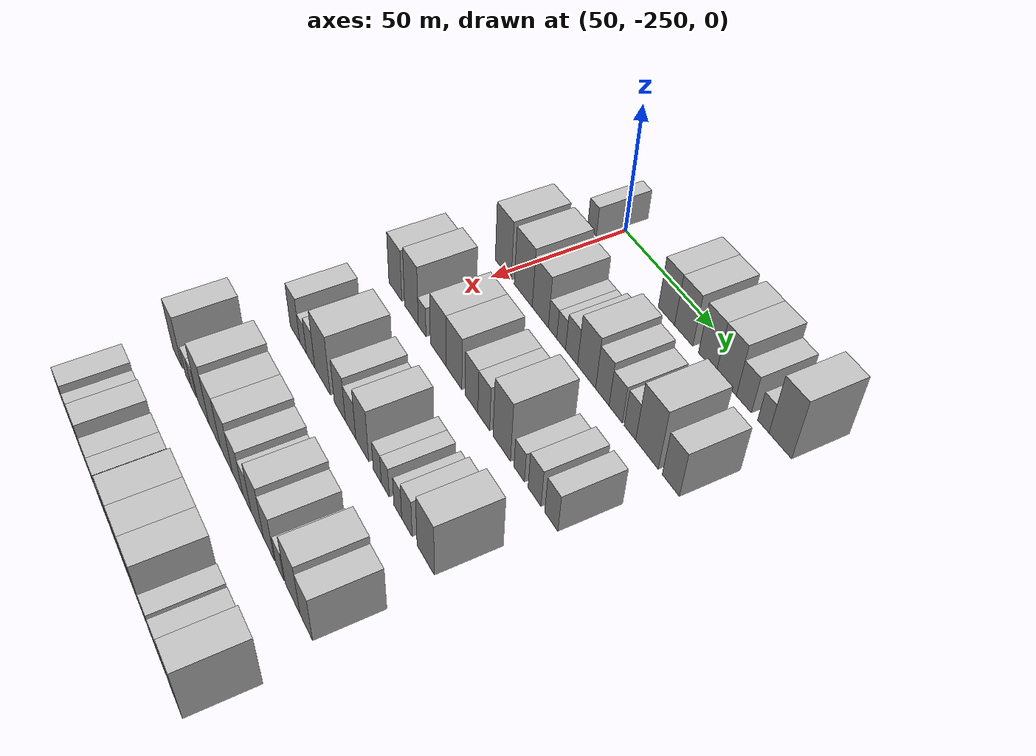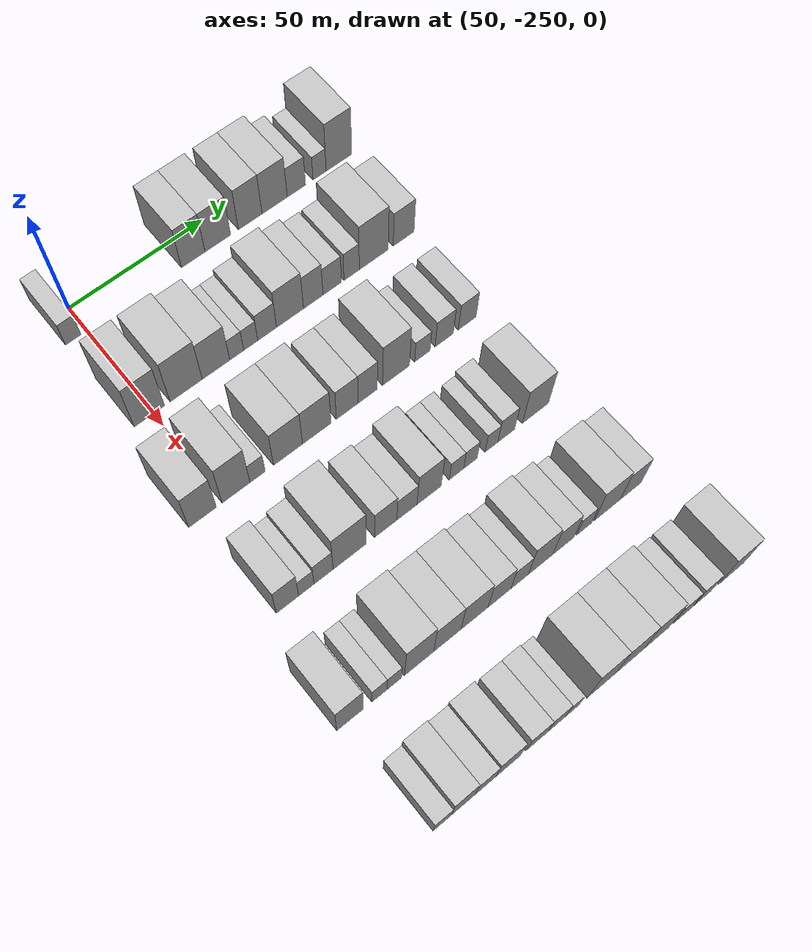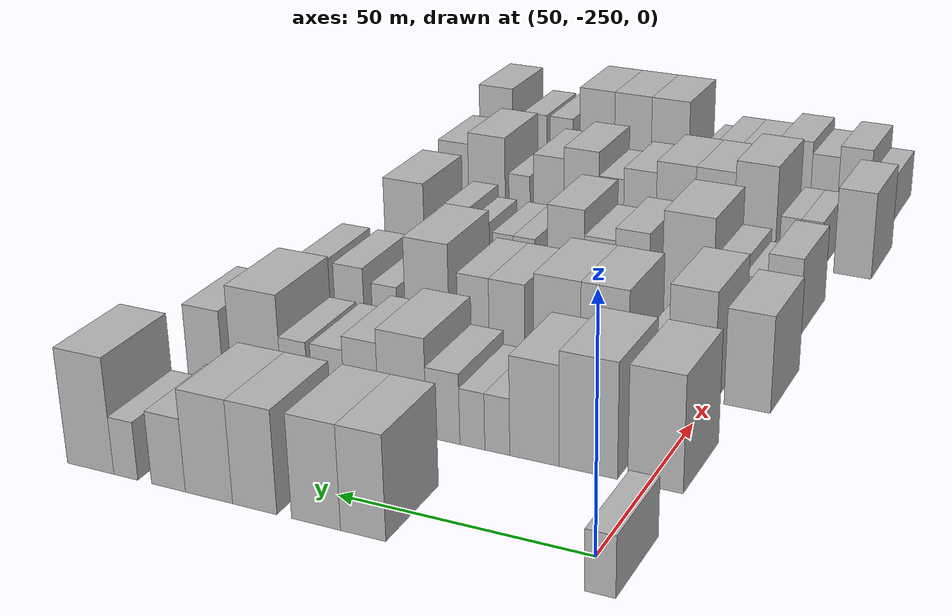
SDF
<sdf version="1.6">
 <world name="default">
  <model name="building_36">
   <static>1</static>
   <pose>50.0000 -254.8560 0 0.000000 0.000000 0.000000</pose>
   <link name="link">
    <pose>0 0 6.00 0 0 0</pose>
    <collision name="collision"><geometry><box><size>20.0000 5.5617 12.0000</size></box></geometry></collision>
    <visual name="visual">
     <cast_shadows>0</cast_shadows>
     <geometry><box><size>20.0000 5.5617 12.0000</size></box></geometry>
     <material>
      <script>
       <uri>model://HANNAS_wall/materials/scripts</uri>
       <uri>model://HANNAS_wall/materials/textures</uri>
       <name>vrc/HANNAS_wall</name>
      </script>
     </material>
    </visual>
   </link>
  </model>
  <model name="building_37">
   <static>1</static>
   <pose>50.0000 -210.6748 0 0.000000 0.000000 0.000000</pose>
   <link name="link">
    <pose>0 0 10.50 0 0 0</pose>
    <collision name="collision"><geometry><box><size>20.0000 8.9336 21.0000</size></box></geometry></collision>
    <visual name="visual">
     <cast_shadows>0</cast_shadows>
     <geometry><box><size>20.0000 8.9336 21.0000</size></box></geometry>
     <material>
      <script>
       <uri>model://HANNAS_wall/materials/scripts</uri>
       <uri>model://HANNAS_wall/materials/textures</uri>
       <name>vrc/HANNAS_wall</name>
      </script>
     </material>
    </visual>
   </link>
  </model>
  <model name="building_38">
   <static>1</static>
   <pose>50.0000 -201.2878 0 0.000000 0.000000 0.000000</pose>
   <link name="link">
    <pose>0 0 10.50 0 0 0</pose>
    <collision name="collision"><geometry><box><size>20.0000 9.8404 21.0000</size></box></geometry></collision>
    <visual name="visual">
     <cast_shadows>0</cast_shadows>
     <geometry><box><size>20.0000 9.8404 21.0000</size></box></geometry>
     <material>
      <script>
       <uri>model://HANNAS_wall/materials/scripts</uri>
       <uri>model://HANNAS_wall/materials/textures</uri>
       <name>vrc/HANNAS_wall</name>
      </script>
     </material>
    </visual>
   </link>
  </model>
  <model name="building_39">
   <static>1</static>
   <pose>50.0000 -188.7767 0 0.000000 0.000000 0.000000</pose>
   <link name="link">
    <pose>0 0 10.50 0 0 0</pose>
    <collision name="collision"><geometry><box><size>20.0000 9.1818 21.0000</size></box></geometry></collision>
    <visual name="visual">
     <cast_shadows>0</cast_shadows>
     <geometry><box><size>20.0000 9.1818 21.0000</size></box></geometry>
     <material>
      <script>
       <uri>model://HANNAS_wall/materials/scripts</uri>
       <uri>model://HANNAS_wall/materials/textures</uri>
       <name>vrc/HANNAS_wall</name>
      </script>
     </material>
    </visual>
   </link>
  </model>
  <model name="building_40">
   <static>1</static>
   <pose>50.0000 -179.1818 0 0.000000 0.000000 0.000000</pose>
   <link name="link">
    <pose>0 0 10.50 0 0 0</pose>
    <collision name="collision"><geometry><box><size>20.0000 10.0080 21.0000</size></box></geometry></collision>
    <visual name="visual">
     <cast_shadows>0</cast_shadows>
     <geometry><box><size>20.0000 10.0080 21.0000</size></box></geometry>
     <material>
      <script>
       <uri>model://HANNAS_wall/materials/scripts</uri>
       <uri>model://HANNAS_wall/materials/textures</uri>
       <name>vrc/HANNAS_wall</name>
      </script>
     </material>
    </visual>
   </link>
  </model>
  <model name="building_41">
   <static>1</static>
   <pose>50.0000 -170.5255 0 0.000000 0.000000 0.000000</pose>
   <link name="link">
    <pose>0 0 7.50 0 0 0</pose>
    <collision name="collision"><geometry><box><size>20.0000 7.3045 15.0000</size></box></geometry></collision>
    <visual name="visual">
     <cast_shadows>0</cast_shadows>
     <geometry><box><size>20.0000 7.3045 15.0000</size></box></geometry>
     <material>
      <script>
       <uri>model://HANNAS_wall/materials/scripts</uri>
       <uri>model://HANNAS_wall/materials/textures</uri>
       <name>vrc/HANNAS_wall</name>
      </script>
     </material>
    </visual>
   </link>
  </model>
  <model name="building_42">
   <static>1</static>
   <pose>50.0000 -161.2277 0 0.000000 0.000000 0.000000</pose>
   <link name="link">
    <pose>0 0 6.00 0 0 0</pose>
    <collision name="collision"><geometry><box><size>20.0000 5.2911 12.0000</size></box></geometry></collision>
    <visual name="visual">
     <cast_shadows>0</cast_shadows>
     <geometry><box><size>20.0000 5.2911 12.0000</size></box></geometry>
     <material>
      <script>
       <uri>model://HANNAS_wall/materials/scripts</uri>
       <uri>model://HANNAS_wall/materials/textures</uri>
       <name>vrc/HANNAS_wall</name>
      </script>
     </material>
    </visual>
   </link>
  </model>
  <model name="building_43">
   <static>1</static>
   <pose>50.0000 -153.3811 0 0.000000 0.000000 0.000000</pose>
   <link name="link">
    <pose>0 0 12.00 0 0 0</pose>
    <collision name="collision"><geometry><box><size>20.0000 10.4020 24.0000</size></box></geometry></collision>
    <visual name="visual">
     <cast_shadows>0</cast_shadows>
     <geometry><box><size>20.0000 10.4020 24.0000</size></box></geometry>
     <material>
      <script>
       <uri>model://HANNAS_wall/materials/scripts</uri>
       <uri>model://HANNAS_wall/materials/textures</uri>
       <name>vrc/HANNAS_wall</name>
      </script>
     </material>
    </visual>
   </link>
  </model>
  <model name="building_165">
   <static>1</static>
   <pose>85.0000 -251.4950 0 0.000000 0.000000 0.000000</pose>
   <link name="link">
    <pose>0 0 12.00 0 0 0</pose>
    <collision name="collision"><geometry><box><size>20.0000 10.7278 24.0000</size></box></geometry></collision>
    <visual name="visual">
     <cast_shadows>0</cast_shadows>
     <geometry><box><size>20.0000 10.7278 24.0000</size></box></geometry>
     <material>
      <script>
       <uri>model://HANNAS_wall/materials/scripts</uri>
       <uri>model://HANNAS_wall/materials/textures</uri>
       <name>vrc/HANNAS_wall</name>
      </script>
     </material>
    </visual>
   </link>
  </model>
  <model name="building_166">
   <static>1</static>
   <pose>85.0000 -238.3337 0 0.000000 0.000000 0.000000</pose>
   <link name="link">
    <pose>0 0 12.00 0 0 0</pose>
    <collision name="collision"><geometry><box><size>20.0000 11.5947 24.0000</size></box></geometry></collision>
    <visual name="visual">
     <cast_shadows>0</cast_shadows>
     <geometry><box><size>20.0000 11.5947 24.0000</size></box></geometry>
     <material>
      <script>
       <uri>model://HANNAS_wall/materials/scripts</uri>
       <uri>model://HANNAS_wall/materials/textures</uri>
       <name>vrc/HANNAS_wall</name>
      </script>
     </material>
    </visual>
   </link>
  </model>
  <model name="building_167">
   <static>1</static>
   <pose>85.0000 -227.5083 0 0.000000 0.000000 0.000000</pose>
   <link name="link">
    <pose>0 0 10.50 0 0 0</pose>
    <collision name="collision"><geometry><box><size>20.0000 10.0561 21.0000</size></box></geometry></collision>
    <visual name="visual">
     <cast_shadows>0</cast_shadows>
     <geometry><box><size>20.0000 10.0561 21.0000</size></box></geometry>
     <material>
      <script>
       <uri>model://HANNAS_wall/materials/scripts</uri>
       <uri>model://HANNAS_wall/materials/textures</uri>
       <name>vrc/HANNAS_wall</name>
      </script>
     </material>
    </visual>
   </link>
  </model>
  <model name="building_168">
   <static>1</static>
   <pose>85.0000 -219.8999 0 0.000000 0.000000 0.000000</pose>
   <link name="link">
    <pose>0 0 6.00 0 0 0</pose>
    <collision name="collision"><geometry><box><size>20.0000 5.1607 12.0000</size></box></geometry></collision>
    <visual name="visual">
     <cast_shadows>0</cast_shadows>
     <geometry><box><size>20.0000 5.1607 12.0000</size></box></geometry>
     <material>
      <script>
       <uri>model://HANNAS_wall/materials/scripts</uri>
       <uri>model://HANNAS_wall/materials/textures</uri>
       <name>vrc/HANNAS_wall</name>
      </script>
     </material>
    </visual>
   </link>
  </model>
  <model name="building_169">
   <static>1</static>
   <pose>85.0000 -214.7024 0 0.000000 0.000000 0.000000</pose>
   <link name="link">
    <pose>0 0 6.00 0 0 0</pose>
    <collision name="collision"><geometry><box><size>20.0000 5.2342 12.0000</size></box></geometry></collision>
    <visual name="visual">
     <cast_shadows>0</cast_shadows>
     <geometry><box><size>20.0000 5.2342 12.0000</size></box></geometry>
     <material>
      <script>
       <uri>model://HANNAS_wall/materials/scripts</uri>
       <uri>model://HANNAS_wall/materials/textures</uri>
       <name>vrc/HANNAS_wall</name>
      </script>
     </material>
    </visual>
   </link>
  </model>
  <model name="building_170">
   <static>1</static>
   <pose>85.0000 -208.5664 0 0.000000 0.000000 0.000000</pose>
   <link name="link">
    <pose>0 0 7.50 0 0 0</pose>
    <collision name="collision"><geometry><box><size>20.0000 7.0379 15.0000</size></box></geometry></collision>
    <visual name="visual">
     <cast_shadows>0</cast_shadows>
     <geometry><box><size>20.0000 7.0379 15.0000</size></box></geometry>
     <material>
      <script>
       <uri>model://HANNAS_wall/materials/scripts</uri>
       <uri>model://HANNAS_wall/materials/textures</uri>
       <name>vrc/HANNAS_wall</name>
      </script>
     </material>
    </visual>
   </link>
  </model>
  <model name="building_171">
   <static>1</static>
   <pose>85.0000 -199.9066 0 0.000000 0.000000 0.000000</pose>
   <link name="link">
    <pose>0 0 10.50 0 0 0</pose>
    <collision name="collision"><geometry><box><size>20.0000 10.2816 21.0000</size></box></geometry></collision>
    <visual name="visual">
     <cast_shadows>0</cast_shadows>
     <geometry><box><size>20.0000 10.2816 21.0000</size></box></geometry>
     <material>
      <script>
       <uri>model://HANNAS_wall/materials/scripts</uri>
       <uri>model://HANNAS_wall/materials/textures</uri>
       <name>vrc/HANNAS_wall</name>
      </script>
     </material>
    </visual>
   </link>
  </model>
  <model name="building_172">
   <static>1</static>
   <pose>85.0000 -191.0370 0 0.000000 0.000000 0.000000</pose>
   <link name="link">
    <pose>0 0 9.00 0 0 0</pose>
    <collision name="collision"><geometry><box><size>20.0000 7.4577 18.0000</size></box></geometry></collision>
    <visual name="visual">
     <cast_shadows>0</cast_shadows>
     <geometry><box><size>20.0000 7.4577 18.0000</size></box></geometry>
     <material>
      <script>
       <uri>model://HANNAS_wall/materials/scripts</uri>
       <uri>model://HANNAS_wall/materials/textures</uri>
       <name>vrc/HANNAS_wall</name>
      </script>
     </material>
    </visual>
   </link>
  </model>
  <model name="building_173">
   <static>1</static>
   <pose>85.0000 -183.7379 0 0.000000 0.000000 0.000000</pose>
   <link name="link">
    <pose>0 0 7.50 0 0 0</pose>
    <collision name="collision"><geometry><box><size>20.0000 7.1405 15.0000</size></box></geometry></collision>
    <visual name="visual">
     <cast_shadows>0</cast_shadows>
     <geometry><box><size>20.0000 7.1405 15.0000</size></box></geometry>
     <material>
      <script>
       <uri>model://HANNAS_wall/materials/scripts</uri>
       <uri>model://HANNAS_wall/materials/textures</uri>
       <name>vrc/HANNAS_wall</name>
      </script>
     </material>
    </visual>
   </link>
  </model>
  <model name="building_174">
   <static>1</static>
   <pose>85.0000 -176.1585 0 0.000000 0.000000 0.000000</pose>
   <link name="link">
    <pose>0 0 7.50 0 0 0</pose>
    <collision name="collision"><geometry><box><size>20.0000 6.0181 15.0000</size></box></geometry></collision>
    <visual name="visual">
     <cast_shadows>0</cast_shadows>
     <geometry><box><size>20.0000 6.0181 15.0000</size></box></geometry>
     <material>
      <script>
       <uri>model://HANNAS_wall/materials/scripts</uri>
       <uri>model://HANNAS_wall/materials/textures</uri>
       <name>vrc/HANNAS_wall</name>
      </script>
     </material>
    </visual>
   </link>
  </model>
  <model name="building_175">
   <static>1</static>
   <pose>85.0000 -167.4033 0 0.000000 0.000000 0.000000</pose>
   <link name="link">
    <pose>0 0 12.00 0 0 0</pose>
    <collision name="collision"><geometry><box><size>20.0000 11.4924 24.0000</size></box></geometry></collision>
    <visual name="visual">
     <cast_shadows>0</cast_shadows>
     <geometry><box><size>20.0000 11.4924 24.0000</size></box></geometry>
     <material>
      <script>
       <uri>model://HANNAS_wall/materials/scripts</uri>
       <uri>model://HANNAS_wall/materials/textures</uri>
       <name>vrc/HANNAS_wall</name>
      </script>
     </material>
    </visual>
   </link>
  </model>
  <model name="building_176">
   <static>1</static>
   <pose>85.0000 -155.4740 0 0.000000 0.000000 0.000000</pose>
   <link name="link">
    <pose>0 0 9.00 0 0 0</pose>
    <collision name="collision"><geometry><box><size>20.0000 8.3662 18.0000</size></box></geometry></collision>
    <visual name="visual">
     <cast_shadows>0</cast_shadows>
     <geometry><box><size>20.0000 8.3662 18.0000</size></box></geometry>
     <material>
      <script>
       <uri>model://HANNAS_wall/materials/scripts</uri>
       <uri>model://HANNAS_wall/materials/textures</uri>
       <name>vrc/HANNAS_wall</name>
      </script>
     </material>
    </visual>
   </link>
  </model>
  <model name="building_291">
   <static>1</static>
   <pose>120.0000 -257.7406 0 0.000000 0.000000 0.000000</pose>
   <link name="link">
    <pose>0 0 10.50 0 0 0</pose>
    <collision name="collision"><geometry><box><size>20.0000 9.5669 21.0000</size></box></geometry></collision>
    <visual name="visual">
     <cast_shadows>0</cast_shadows>
     <geometry><box><size>20.0000 9.5669 21.0000</size></box></geometry>
     <material>
      <script>
       <uri>model://HANNAS_wall/materials/scripts</uri>
       <uri>model://HANNAS_wall/materials/textures</uri>
       <name>vrc/HANNAS_wall</name>
      </script>
     </material>
    </visual>
   </link>
  </model>
  <model name="building_292">
   <static>1</static>
   <pose>120.0000 -246.0551 0 0.000000 0.000000 0.000000</pose>
   <link name="link">
    <pose>0 0 12.00 0 0 0</pose>
    <collision name="collision"><geometry><box><size>20.0000 9.8041 24.0000</size></box></geometry></collision>
    <visual name="visual">
     <cast_shadows>0</cast_shadows>
     <geometry><box><size>20.0000 9.8041 24.0000</size></box></geometry>
     <material>
      <script>
       <uri>model://HANNAS_wall/materials/scripts</uri>
       <uri>model://HANNAS_wall/materials/textures</uri>
       <name>vrc/HANNAS_wall</name>
      </script>
     </material>
    </visual>
   </link>
  </model>
  <model name="building_293">
   <static>1</static>
   <pose>120.0000 -238.4443 0 0.000000 0.000000 0.000000</pose>
   <link name="link">
    <pose>0 0 6.00 0 0 0</pose>
    <collision name="collision"><geometry><box><size>20.0000 5.4176 12.0000</size></box></geometry></collision>
    <visual name="visual">
     <cast_shadows>0</cast_shadows>
     <geometry><box><size>20.0000 5.4176 12.0000</size></box></geometry>
     <material>
      <script>
       <uri>model://HANNAS_wall/materials/scripts</uri>
       <uri>model://HANNAS_wall/materials/textures</uri>
       <name>vrc/HANNAS_wall</name>
      </script>
     </material>
    </visual>
   </link>
  </model>
  <model name="building_294">
   <static>1</static>
   <pose>120.0000 -227.4866 0 0.000000 0.000000 0.000000</pose>
   <link name="link">
    <pose>0 0 10.50 0 0 0</pose>
    <collision name="collision"><geometry><box><size>20.0000 10.4977 21.0000</size></box></geometry></collision>
    <visual name="visual">
     <cast_shadows>0</cast_shadows>
     <geometry><box><size>20.0000 10.4977 21.0000</size></box></geometry>
     <material>
      <script>
       <uri>model://HANNAS_wall/materials/scripts</uri>
       <uri>model://HANNAS_wall/materials/textures</uri>
       <name>vrc/HANNAS_wall</name>
      </script>
     </material>
    </visual>
   </link>
  </model>
  <model name="building_295">
   <static>1</static>
   <pose>120.0000 -217.0332 0 0.000000 0.000000 0.000000</pose>
   <link name="link">
    <pose>0 0 10.50 0 0 0</pose>
    <collision name="collision"><geometry><box><size>20.0000 10.4092 21.0000</size></box></geometry></collision>
    <visual name="visual">
     <cast_shadows>0</cast_shadows>
     <geometry><box><size>20.0000 10.4092 21.0000</size></box></geometry>
     <material>
      <script>
       <uri>model://HANNAS_wall/materials/scripts</uri>
       <uri>model://HANNAS_wall/materials/textures</uri>
       <name>vrc/HANNAS_wall</name>
      </script>
     </material>
    </visual>
   </link>
  </model>
  <model name="building_296">
   <static>1</static>
   <pose>120.0000 -205.7742 0 0.000000 0.000000 0.000000</pose>
   <link name="link">
    <pose>0 0 9.00 0 0 0</pose>
    <collision name="collision"><geometry><box><size>20.0000 8.1087 18.0000</size></box></geometry></collision>
    <visual name="visual">
     <cast_shadows>0</cast_shadows>
     <geometry><box><size>20.0000 8.1087 18.0000</size></box></geometry>
     <material>
      <script>
       <uri>model://HANNAS_wall/materials/scripts</uri>
       <uri>model://HANNAS_wall/materials/textures</uri>
       <name>vrc/HANNAS_wall</name>
      </script>
     </material>
    </visual>
   </link>
  </model>
  <model name="building_297">
   <static>1</static>
   <pose>120.0000 -198.1110 0 0.000000 0.000000 0.000000</pose>
   <link name="link">
    <pose>0 0 9.00 0 0 0</pose>
    <collision name="collision"><geometry><box><size>20.0000 7.2179 18.0000</size></box></geometry></collision>
    <visual name="visual">
     <cast_shadows>0</cast_shadows>
     <geometry><box><size>20.0000 7.2179 18.0000</size></box></geometry>
     <material>
      <script>
       <uri>model://HANNAS_wall/materials/scripts</uri>
       <uri>model://HANNAS_wall/materials/textures</uri>
       <name>vrc/HANNAS_wall</name>
      </script>
     </material>
    </visual>
   </link>
  </model>
  <model name="building_298">
   <static>1</static>
   <pose>120.0000 -187.3551 0 0.000000 0.000000 0.000000</pose>
   <link name="link">
    <pose>0 0 12.00 0 0 0</pose>
    <collision name="collision"><geometry><box><size>20.0000 10.2939 24.0000</size></box></geometry></collision>
    <visual name="visual">
     <cast_shadows>0</cast_shadows>
     <geometry><box><size>20.0000 10.2939 24.0000</size></box></geometry>
     <material>
      <script>
       <uri>model://HANNAS_wall/materials/scripts</uri>
       <uri>model://HANNAS_wall/materials/textures</uri>
       <name>vrc/HANNAS_wall</name>
      </script>
     </material>
    </visual>
   </link>
  </model>
  <model name="building_299">
   <static>1</static>
   <pose>120.0000 -177.2203 0 0.000000 0.000000 0.000000</pose>
   <link name="link">
    <pose>0 0 6.00 0 0 0</pose>
    <collision name="collision"><geometry><box><size>20.0000 5.9755 12.0000</size></box></geometry></collision>
    <visual name="visual">
     <cast_shadows>0</cast_shadows>
     <geometry><box><size>20.0000 5.9755 12.0000</size></box></geometry>
     <material>
      <script>
       <uri>model://HANNAS_wall/materials/scripts</uri>
       <uri>model://HANNAS_wall/materials/textures</uri>
       <name>vrc/HANNAS_wall</name>
      </script>
     </material>
    </visual>
   </link>
  </model>
  <model name="building_300">
   <static>1</static>
   <pose>120.0000 -168.6690 0 0.000000 0.000000 0.000000</pose>
   <link name="link">
    <pose>0 0 7.50 0 0 0</pose>
    <collision name="collision"><geometry><box><size>20.0000 7.1272 15.0000</size></box></geometry></collision>
    <visual name="visual">
     <cast_shadows>0</cast_shadows>
     <geometry><box><size>20.0000 7.1272 15.0000</size></box></geometry>
     <material>
      <script>
       <uri>model://HANNAS_wall/materials/scripts</uri>
       <uri>model://HANNAS_wall/materials/textures</uri>
       <name>vrc/HANNAS_wall</name>
      </script>
     </material>
    </visual>
   </link>
  </model>
  <model name="building_301">
   <static>1</static>
   <pose>120.0000 -159.5908 0 0.000000 0.000000 0.000000</pose>
   <link name="link">
    <pose>0 0 7.50 0 0 0</pose>
    <collision name="collision"><geometry><box><size>20.0000 7.0292 15.0000</size></box></geometry></collision>
    <visual name="visual">
     <cast_shadows>0</cast_shadows>
     <geometry><box><size>20.0000 7.0292 15.0000</size></box></geometry>
     <material>
      <script>
       <uri>model://HANNAS_wall/materials/scripts</uri>
       <uri>model://HANNAS_wall/materials/textures</uri>
       <name>vrc/HANNAS_wall</name>
      </script>
     </material>
    </visual>
   </link>
  </model>
  <model name="building_417">
   <static>1</static>
   <pose>155.0000 -254.4871 0 0.000000 0.000000 0.000000</pose>
   <link name="link">
    <pose>0 0 9.00 0 0 0</pose>
    <collision name="collision"><geometry><box><size>20.0000 7.6816 18.0000</size></box></geometry></collision>
    <visual name="visual">
     <cast_shadows>0</cast_shadows>
     <geometry><box><size>20.0000 7.6816 18.0000</size></box></geometry>
     <material>
      <script>
       <uri>model://HANNAS_wall/materials/scripts</uri>
       <uri>model://HANNAS_wall/materials/textures</uri>
       <name>vrc/HANNAS_wall</name>
      </script>
     </material>
    </visual>
   </link>
  </model>
  <model name="building_418">
   <static>1</static>
   <pose>155.0000 -247.9897 0 0.000000 0.000000 0.000000</pose>
   <link name="link">
    <pose>0 0 6.00 0 0 0</pose>
    <collision name="collision"><geometry><box><size>20.0000 5.3132 12.0000</size></box></geometry></collision>
    <visual name="visual">
     <cast_shadows>0</cast_shadows>
     <geometry><box><size>20.0000 5.3132 12.0000</size></box></geometry>
     <material>
      <script>
       <uri>model://HANNAS_wall/materials/scripts</uri>
       <uri>model://HANNAS_wall/materials/textures</uri>
       <name>vrc/HANNAS_wall</name>
      </script>
     </material>
    </visual>
   </link>
  </model>
  <model name="building_419">
   <static>1</static>
   <pose>155.0000 -242.0135 0 0.000000 0.000000 0.000000</pose>
   <link name="link">
    <pose>0 0 7.50 0 0 0</pose>
    <collision name="collision"><geometry><box><size>20.0000 6.6393 15.0000</size></box></geometry></collision>
    <visual name="visual">
     <cast_shadows>0</cast_shadows>
     <geometry><box><size>20.0000 6.6393 15.0000</size></box></geometry>
     <material>
      <script>
       <uri>model://HANNAS_wall/materials/scripts</uri>
       <uri>model://HANNAS_wall/materials/textures</uri>
       <name>vrc/HANNAS_wall</name>
      </script>
     </material>
    </visual>
   </link>
  </model>
  <model name="building_420">
   <static>1</static>
   <pose>155.0000 -232.8350 0 0.000000 0.000000 0.000000</pose>
   <link name="link">
    <pose>0 0 12.00 0 0 0</pose>
    <collision name="collision"><geometry><box><size>20.0000 11.7176 24.0000</size></box></geometry></collision>
    <visual name="visual">
     <cast_shadows>0</cast_shadows>
     <geometry><box><size>20.0000 11.7176 24.0000</size></box></geometry>
     <material>
      <script>
       <uri>model://HANNAS_wall/materials/scripts</uri>
       <uri>model://HANNAS_wall/materials/textures</uri>
       <name>vrc/HANNAS_wall</name>
      </script>
     </material>
    </visual>
   </link>
  </model>
  <model name="building_421">
   <static>1</static>
   <pose>155.0000 -219.9535 0 0.000000 0.000000 0.000000</pose>
   <link name="link">
    <pose>0 0 9.00 0 0 0</pose>
    <collision name="collision"><geometry><box><size>20.0000 8.0453 18.0000</size></box></geometry></collision>
    <visual name="visual">
     <cast_shadows>0</cast_shadows>
     <geometry><box><size>20.0000 8.0453 18.0000</size></box></geometry>
     <material>
      <script>
       <uri>model://HANNAS_wall/materials/scripts</uri>
       <uri>model://HANNAS_wall/materials/textures</uri>
       <name>vrc/HANNAS_wall</name>
      </script>
     </material>
    </visual>
   </link>
  </model>
  <model name="building_422">
   <static>1</static>
   <pose>155.0000 -212.2434 0 0.000000 0.000000 0.000000</pose>
   <link name="link">
    <pose>0 0 7.50 0 0 0</pose>
    <collision name="collision"><geometry><box><size>20.0000 7.3749 15.0000</size></box></geometry></collision>
    <visual name="visual">
     <cast_shadows>0</cast_shadows>
     <geometry><box><size>20.0000 7.3749 15.0000</size></box></geometry>
     <material>
      <script>
       <uri>model://HANNAS_wall/materials/scripts</uri>
       <uri>model://HANNAS_wall/materials/textures</uri>
       <name>vrc/HANNAS_wall</name>
      </script>
     </material>
    </visual>
   </link>
  </model>
  <model name="building_423">
   <static>1</static>
   <pose>155.0000 -204.0797 0 0.000000 0.000000 0.000000</pose>
   <link name="link">
    <pose>0 0 10.50 0 0 0</pose>
    <collision name="collision"><geometry><box><size>20.0000 8.9526 21.0000</size></box></geometry></collision>
    <visual name="visual">
     <cast_shadows>0</cast_shadows>
     <geometry><box><size>20.0000 8.9526 21.0000</size></box></geometry>
     <material>
      <script>
       <uri>model://HANNAS_wall/materials/scripts</uri>
       <uri>model://HANNAS_wall/materials/textures</uri>
       <name>vrc/HANNAS_wall</name>
      </script>
     </material>
    </visual>
   </link>
  </model>
  <model name="building_424">
   <static>1</static>
   <pose>155.0000 -193.8989 0 0.000000 0.000000 0.000000</pose>
   <link name="link">
    <pose>0 0 6.00 0 0 0</pose>
    <collision name="collision"><geometry><box><size>20.0000 5.4090 12.0000</size></box></geometry></collision>
    <visual name="visual">
     <cast_shadows>0</cast_shadows>
     <geometry><box><size>20.0000 5.4090 12.0000</size></box></geometry>
     <material>
      <script>
       <uri>model://HANNAS_wall/materials/scripts</uri>
       <uri>model://HANNAS_wall/materials/textures</uri>
       <name>vrc/HANNAS_wall</name>
      </script>
     </material>
    </visual>
   </link>
  </model>
  <model name="building_425">
   <static>1</static>
   <pose>155.0000 -188.6364 0 0.000000 0.000000 0.000000</pose>
   <link name="link">
    <pose>0 0 6.00 0 0 0</pose>
    <collision name="collision"><geometry><box><size>20.0000 5.1159 12.0000</size></box></geometry></collision>
    <visual name="visual">
     <cast_shadows>0</cast_shadows>
     <geometry><box><size>20.0000 5.1159 12.0000</size></box></geometry>
     <material>
      <script>
       <uri>model://HANNAS_wall/materials/scripts</uri>
       <uri>model://HANNAS_wall/materials/textures</uri>
       <name>vrc/HANNAS_wall</name>
      </script>
     </material>
    </visual>
   </link>
  </model>
  <model name="building_426">
   <static>1</static>
   <pose>155.0000 -180.6395 0 0.000000 0.000000 0.000000</pose>
   <link name="link">
    <pose>0 0 6.00 0 0 0</pose>
    <collision name="collision"><geometry><box><size>20.0000 4.8780 12.0000</size></box></geometry></collision>
    <visual name="visual">
     <cast_shadows>0</cast_shadows>
     <geometry><box><size>20.0000 4.8780 12.0000</size></box></geometry>
     <material>
      <script>
       <uri>model://HANNAS_wall/materials/scripts</uri>
       <uri>model://HANNAS_wall/materials/textures</uri>
       <name>vrc/HANNAS_wall</name>
      </script>
     </material>
    </visual>
   </link>
  </model>
  <model name="building_427">
   <static>1</static>
   <pose>155.0000 -174.9642 0 0.000000 0.000000 0.000000</pose>
   <link name="link">
    <pose>0 0 7.50 0 0 0</pose>
    <collision name="collision"><geometry><box><size>20.0000 6.4726 15.0000</size></box></geometry></collision>
    <visual name="visual">
     <cast_shadows>0</cast_shadows>
     <geometry><box><size>20.0000 6.4726 15.0000</size></box></geometry>
     <material>
      <script>
       <uri>model://HANNAS_wall/materials/scripts</uri>
       <uri>model://HANNAS_wall/materials/textures</uri>
       <name>vrc/HANNAS_wall</name>
      </script>
     </material>
    </visual>
   </link>
  </model>
  <model name="building_428">
   <static>1</static>
   <pose>155.0000 -163.5966 0 0.000000 0.000000 0.000000</pose>
   <link name="link">
    <pose>0 0 10.50 0 0 0</pose>
    <collision name="collision"><geometry><box><size>20.0000 10.2624 21.0000</size></box></geometry></collision>
    <visual name="visual">
     <cast_shadows>0</cast_shadows>
     <geometry><box><size>20.0000 10.2624 21.0000</size></box></geometry>
     <material>
      <script>
       <uri>model://HANNAS_wall/materials/scripts</uri>
       <uri>model://HANNAS_wall/materials/textures</uri>
       <name>vrc/HANNAS_wall</name>
      </script>
     </material>
    </visual>
   </link>
  </model>
  <model name="building_545">
   <static>1</static>
   <pose>190.0000 -260.6671 0 0.000000 0.000000 0.000000</pose>
   <link name="link">
    <pose>0 0 10.50 0 0 0</pose>
    <collision name="collision"><geometry><box><size>20.0000 8.8437 21.0000</size></box></geometry></collision>
    <visual name="visual">
     <cast_shadows>0</cast_shadows>
     <geometry><box><size>20.0000 8.8437 21.0000</size></box></geometry>
     <material>
      <script>
       <uri>model://HANNAS_wall/materials/scripts</uri>
       <uri>model://HANNAS_wall/materials/textures</uri>
       <name>vrc/HANNAS_wall</name>
      </script>
     </material>
    </visual>
   </link>
  </model>
  <model name="building_546">
   <static>1</static>
   <pose>190.0000 -250.6575 0 0.000000 0.000000 0.000000</pose>
   <link name="link">
    <pose>0 0 6.00 0 0 0</pose>
    <collision name="collision"><geometry><box><size>20.0000 5.1753 12.0000</size></box></geometry></collision>
    <visual name="visual">
     <cast_shadows>0</cast_shadows>
     <geometry><box><size>20.0000 5.1753 12.0000</size></box></geometry>
     <material>
      <script>
       <uri>model://HANNAS_wall/materials/scripts</uri>
       <uri>model://HANNAS_wall/materials/textures</uri>
       <name>vrc/HANNAS_wall</name>
      </script>
     </material>
    </visual>
   </link>
  </model>
  <model name="building_547">
   <static>1</static>
   <pose>190.0000 -245.6084 0 0.000000 0.000000 0.000000</pose>
   <link name="link">
    <pose>0 0 6.00 0 0 0</pose>
    <collision name="collision"><geometry><box><size>20.0000 4.9229 12.0000</size></box></geometry></collision>
    <visual name="visual">
     <cast_shadows>0</cast_shadows>
     <geometry><box><size>20.0000 4.9229 12.0000</size></box></geometry>
     <material>
      <script>
       <uri>model://HANNAS_wall/materials/scripts</uri>
       <uri>model://HANNAS_wall/materials/textures</uri>
       <name>vrc/HANNAS_wall</name>
      </script>
     </material>
    </visual>
   </link>
  </model>
  <model name="building_548">
   <static>1</static>
   <pose>190.0000 -237.0457 0 0.000000 0.000000 0.000000</pose>
   <link name="link">
    <pose>0 0 12.00 0 0 0</pose>
    <collision name="collision"><geometry><box><size>20.0000 10.2027 24.0000</size></box></geometry></collision>
    <visual name="visual">
     <cast_shadows>0</cast_shadows>
     <geometry><box><size>20.0000 10.2027 24.0000</size></box></geometry>
     <material>
      <script>
       <uri>model://HANNAS_wall/materials/scripts</uri>
       <uri>model://HANNAS_wall/materials/textures</uri>
       <name>vrc/HANNAS_wall</name>
      </script>
     </material>
    </visual>
   </link>
  </model>
  <model name="building_549">
   <static>1</static>
   <pose>190.0000 -227.1162 0 0.000000 0.000000 0.000000</pose>
   <link name="link">
    <pose>0 0 10.50 0 0 0</pose>
    <collision name="collision"><geometry><box><size>20.0000 9.6563 21.0000</size></box></geometry></collision>
    <visual name="visual">
     <cast_shadows>0</cast_shadows>
     <geometry><box><size>20.0000 9.6563 21.0000</size></box></geometry>
     <material>
      <script>
       <uri>model://HANNAS_wall/materials/scripts</uri>
       <uri>model://HANNAS_wall/materials/textures</uri>
       <name>vrc/HANNAS_wall</name>
      </script>
     </material>
    </visual>
   </link>
  </model>
  <model name="building_550">
   <static>1</static>
   <pose>190.0000 -217.4132 0 0.000000 0.000000 0.000000</pose>
   <link name="link">
    <pose>0 0 10.50 0 0 0</pose>
    <collision name="collision"><geometry><box><size>20.0000 9.7496 21.0000</size></box></geometry></collision>
    <visual name="visual">
     <cast_shadows>0</cast_shadows>
     <geometry><box><size>20.0000 9.7496 21.0000</size></box></geometry>
     <material>
      <script>
       <uri>model://HANNAS_wall/materials/scripts</uri>
       <uri>model://HANNAS_wall/materials/textures</uri>
       <name>vrc/HANNAS_wall</name>
      </script>
     </material>
    </visual>
   </link>
  </model>
  <model name="building_551">
   <static>1</static>
   <pose>190.0000 -208.3984 0 0.000000 0.000000 0.000000</pose>
   <link name="link">
    <pose>0 0 9.00 0 0 0</pose>
    <collision name="collision"><geometry><box><size>20.0000 8.2801 18.0000</size></box></geometry></collision>
    <visual name="visual">
     <cast_shadows>0</cast_shadows>
     <geometry><box><size>20.0000 8.2801 18.0000</size></box></geometry>
     <material>
      <script>
       <uri>model://HANNAS_wall/materials/scripts</uri>
       <uri>model://HANNAS_wall/materials/textures</uri>
       <name>vrc/HANNAS_wall</name>
      </script>
     </material>
    </visual>
   </link>
  </model>
  <model name="building_552">
   <static>1</static>
   <pose>190.0000 -201.0555 0 0.000000 0.000000 0.000000</pose>
   <link name="link">
    <pose>0 0 7.50 0 0 0</pose>
    <collision name="collision"><geometry><box><size>20.0000 6.4057 15.0000</size></box></geometry></collision>
    <visual name="visual">
     <cast_shadows>0</cast_shadows>
     <geometry><box><size>20.0000 6.4057 15.0000</size></box></geometry>
     <material>
      <script>
       <uri>model://HANNAS_wall/materials/scripts</uri>
       <uri>model://HANNAS_wall/materials/textures</uri>
       <name>vrc/HANNAS_wall</name>
      </script>
     </material>
    </visual>
   </link>
  </model>
  <model name="building_553">
   <static>1</static>
   <pose>190.0000 -193.2849 0 0.000000 0.000000 0.000000</pose>
   <link name="link">
    <pose>0 0 10.50 0 0 0</pose>
    <collision name="collision"><geometry><box><size>20.0000 9.1355 21.0000</size></box></geometry></collision>
    <visual name="visual">
     <cast_shadows>0</cast_shadows>
     <geometry><box><size>20.0000 9.1355 21.0000</size></box></geometry>
     <material>
      <script>
       <uri>model://HANNAS_wall/materials/scripts</uri>
       <uri>model://HANNAS_wall/materials/textures</uri>
       <name>vrc/HANNAS_wall</name>
      </script>
     </material>
    </visual>
   </link>
  </model>
  <model name="building_554">
   <static>1</static>
   <pose>190.0000 -184.6926 0 0.000000 0.000000 0.000000</pose>
   <link name="link">
    <pose>0 0 9.00 0 0 0</pose>
    <collision name="collision"><geometry><box><size>20.0000 8.0491 18.0000</size></box></geometry></collision>
    <visual name="visual">
     <cast_shadows>0</cast_shadows>
     <geometry><box><size>20.0000 8.0491 18.0000</size></box></geometry>
     <material>
      <script>
       <uri>model://HANNAS_wall/materials/scripts</uri>
       <uri>model://HANNAS_wall/materials/textures</uri>
       <name>vrc/HANNAS_wall</name>
      </script>
     </material>
    </visual>
   </link>
  </model>
  <model name="building_555">
   <static>1</static>
   <pose>190.0000 -176.8301 0 0.000000 0.000000 0.000000</pose>
   <link name="link">
    <pose>0 0 6.00 0 0 0</pose>
    <collision name="collision"><geometry><box><size>20.0000 5.6759 12.0000</size></box></geometry></collision>
    <visual name="visual">
     <cast_shadows>0</cast_shadows>
     <geometry><box><size>20.0000 5.6759 12.0000</size></box></geometry>
     <material>
      <script>
       <uri>model://HANNAS_wall/materials/scripts</uri>
       <uri>model://HANNAS_wall/materials/textures</uri>
       <name>vrc/HANNAS_wall</name>
      </script>
     </material>
    </visual>
   </link>
  </model>
  <model name="building_556">
   <static>1</static>
   <pose>190.0000 -167.9922 0 0.000000 0.000000 0.000000</pose>
   <link name="link">
    <pose>0 0 10.50 0 0 0</pose>
    <collision name="collision"><geometry><box><size>20.0000 9.9999 21.0000</size></box></geometry></collision>
    <visual name="visual">
     <cast_shadows>0</cast_shadows>
     <geometry><box><size>20.0000 9.9999 21.0000</size></box></geometry>
     <material>
      <script>
       <uri>model://HANNAS_wall/materials/scripts</uri>
       <uri>model://HANNAS_wall/materials/textures</uri>
       <name>vrc/HANNAS_wall</name>
      </script>
     </material>
    </visual>
   </link>
  </model>
  <model name="building_557">
   <static>1</static>
   <pose>190.0000 -158.9153 0 0.000000 0.000000 0.000000</pose>
   <link name="link">
    <pose>0 0 9.00 0 0 0</pose>
    <collision name="collision"><geometry><box><size>20.0000 8.1539 18.0000</size></box></geometry></collision>
    <visual name="visual">
     <cast_shadows>0</cast_shadows>
     <geometry><box><size>20.0000 8.1539 18.0000</size></box></geometry>
     <material>
      <script>
       <uri>model://HANNAS_wall/materials/scripts</uri>
       <uri>model://HANNAS_wall/materials/textures</uri>
       <name>vrc/HANNAS_wall</name>
      </script>
     </material>
    </visual>
   </link>
  </model>
  <model name="building_668">
   <static>1</static>
   <pose>225.0000 -258.6937 0 0.000000 0.000000 0.000000</pose>
   <link name="link">
    <pose>0 0 6.00 0 0 0</pose>
    <collision name="collision"><geometry><box><size>20.0000 5.9559 12.0000</size></box></geometry></collision>
    <visual name="visual">
     <cast_shadows>0</cast_shadows>
     <geometry><box><size>20.0000 5.9559 12.0000</size></box></geometry>
     <material>
      <script>
       <uri>model://HANNAS_wall/materials/scripts</uri>
       <uri>model://HANNAS_wall/materials/textures</uri>
       <name>vrc/HANNAS_wall</name>
      </script>
     </material>
    </visual>
   </link>
  </model>
  <model name="building_669">
   <static>1</static>
   <pose>225.0000 -251.6767 0 0.000000 0.000000 0.000000</pose>
   <link name="link">
    <pose>0 0 9.00 0 0 0</pose>
    <collision name="collision"><geometry><box><size>20.0000 8.0782 18.0000</size></box></geometry></collision>
    <visual name="visual">
     <cast_shadows>0</cast_shadows>
     <geometry><box><size>20.0000 8.0782 18.0000</size></box></geometry>
     <material>
      <script>
       <uri>model://HANNAS_wall/materials/scripts</uri>
       <uri>model://HANNAS_wall/materials/textures</uri>
       <name>vrc/HANNAS_wall</name>
      </script>
     </material>
    </visual>
   </link>
  </model>
  <model name="building_670">
   <static>1</static>
   <pose>225.0000 -244.1502 0 0.000000 0.000000 0.000000</pose>
   <link name="link">
    <pose>0 0 7.50 0 0 0</pose>
    <collision name="collision"><geometry><box><size>20.0000 6.9747 15.0000</size></box></geometry></collision>
    <visual name="visual">
     <cast_shadows>0</cast_shadows>
     <geometry><box><size>20.0000 6.9747 15.0000</size></box></geometry>
     <material>
      <script>
       <uri>model://HANNAS_wall/materials/scripts</uri>
       <uri>model://HANNAS_wall/materials/textures</uri>
       <name>vrc/HANNAS_wall</name>
      </script>
     </material>
    </visual>
   </link>
  </model>
  <model name="building_671">
   <static>1</static>
   <pose>225.0000 -236.3909 0 0.000000 0.000000 0.000000</pose>
   <link name="link">
    <pose>0 0 9.00 0 0 0</pose>
    <collision name="collision"><geometry><box><size>20.0000 8.5439 18.0000</size></box></geometry></collision>
    <visual name="visual">
     <cast_shadows>0</cast_shadows>
     <geometry><box><size>20.0000 8.5439 18.0000</size></box></geometry>
     <material>
      <script>
       <uri>model://HANNAS_wall/materials/scripts</uri>
       <uri>model://HANNAS_wall/materials/textures</uri>
       <name>vrc/HANNAS_wall</name>
      </script>
     </material>
    </visual>
   </link>
  </model>
  <model name="building_672">
   <static>1</static>
   <pose>225.0000 -226.4041 0 0.000000 0.000000 0.000000</pose>
   <link name="link">
    <pose>0 0 7.50 0 0 0</pose>
    <collision name="collision"><geometry><box><size>20.0000 7.4296 15.0000</size></box></geometry></collision>
    <visual name="visual">
     <cast_shadows>0</cast_shadows>
     <geometry><box><size>20.0000 7.4296 15.0000</size></box></geometry>
     <material>
      <script>
       <uri>model://HANNAS_wall/materials/scripts</uri>
       <uri>model://HANNAS_wall/materials/textures</uri>
       <name>vrc/HANNAS_wall</name>
      </script>
     </material>
    </visual>
   </link>
  </model>
  <model name="building_673">
   <static>1</static>
   <pose>225.0000 -219.4716 0 0.000000 0.000000 0.000000</pose>
   <link name="link">
    <pose>0 0 7.50 0 0 0</pose>
    <collision name="collision"><geometry><box><size>20.0000 6.4354 15.0000</size></box></geometry></collision>
    <visual name="visual">
     <cast_shadows>0</cast_shadows>
     <geometry><box><size>20.0000 6.4354 15.0000</size></box></geometry>
     <material>
      <script>
       <uri>model://HANNAS_wall/materials/scripts</uri>
       <uri>model://HANNAS_wall/materials/textures</uri>
       <name>vrc/HANNAS_wall</name>
      </script>
     </material>
    </visual>
   </link>
  </model>
  <model name="building_674">
   <static>1</static>
   <pose>225.0000 -213.8272 0 0.000000 0.000000 0.000000</pose>
   <link name="link">
    <pose>0 0 6.00 0 0 0</pose>
    <collision name="collision"><geometry><box><size>20.0000 4.8534 12.0000</size></box></geometry></collision>
    <visual name="visual">
     <cast_shadows>0</cast_shadows>
     <geometry><box><size>20.0000 4.8534 12.0000</size></box></geometry>
     <material>
      <script>
       <uri>model://HANNAS_wall/materials/scripts</uri>
       <uri>model://HANNAS_wall/materials/textures</uri>
       <name>vrc/HANNAS_wall</name>
      </script>
     </material>
    </visual>
   </link>
  </model>
  <model name="building_675">
   <static>1</static>
   <pose>225.0000 -203.2707 0 0.000000 0.000000 0.000000</pose>
   <link name="link">
    <pose>0 0 12.00 0 0 0</pose>
    <collision name="collision"><geometry><box><size>20.0000 10.2595 24.0000</size></box></geometry></collision>
    <visual name="visual">
     <cast_shadows>0</cast_shadows>
     <geometry><box><size>20.0000 10.2595 24.0000</size></box></geometry>
     <material>
      <script>
       <uri>model://HANNAS_wall/materials/scripts</uri>
       <uri>model://HANNAS_wall/materials/textures</uri>
       <name>vrc/HANNAS_wall</name>
      </script>
     </material>
    </visual>
   </link>
  </model>
  <model name="building_676">
   <static>1</static>
   <pose>225.0000 -193.0793 0 0.000000 0.000000 0.000000</pose>
   <link name="link">
    <pose>0 0 12.00 0 0 0</pose>
    <collision name="collision"><geometry><box><size>20.0000 10.1235 24.0000</size></box></geometry></collision>
    <visual name="visual">
     <cast_shadows>0</cast_shadows>
     <geometry><box><size>20.0000 10.1235 24.0000</size></box></geometry>
     <material>
      <script>
       <uri>model://HANNAS_wall/materials/scripts</uri>
       <uri>model://HANNAS_wall/materials/textures</uri>
       <name>vrc/HANNAS_wall</name>
      </script>
     </material>
    </visual>
   </link>
  </model>
  <model name="building_677">
   <static>1</static>
   <pose>225.0000 -183.1739 0 0.000000 0.000000 0.000000</pose>
   <link name="link">
    <pose>0 0 12.00 0 0 0</pose>
    <collision name="collision"><geometry><box><size>20.0000 9.6874 24.0000</size></box></geometry></collision>
    <visual name="visual">
     <cast_shadows>0</cast_shadows>
     <geometry><box><size>20.0000 9.6874 24.0000</size></box></geometry>
     <material>
      <script>
       <uri>model://HANNAS_wall/materials/scripts</uri>
       <uri>model://HANNAS_wall/materials/textures</uri>
       <name>vrc/HANNAS_wall</name>
      </script>
     </material>
    </visual>
   </link>
  </model>
  <model name="building_678">
   <static>1</static>
   <pose>225.0000 -173.0895 0 0.000000 0.000000 0.000000</pose>
   <link name="link">
    <pose>0 0 7.50 0 0 0</pose>
    <collision name="collision"><geometry><box><size>20.0000 6.4813 15.0000</size></box></geometry></collision>
    <visual name="visual">
     <cast_shadows>0</cast_shadows>
     <geometry><box><size>20.0000 6.4813 15.0000</size></box></geometry>
     <material>
      <script>
       <uri>model://HANNAS_wall/materials/scripts</uri>
       <uri>model://HANNAS_wall/materials/textures</uri>
       <name>vrc/HANNAS_wall</name>
      </script>
     </material>
    </visual>
   </link>
  </model>
  <model name="building_679">
   <static>1</static>
   <pose>225.0000 -165.4600 0 0.000000 0.000000 0.000000</pose>
   <link name="link">
    <pose>0 0 7.50 0 0 0</pose>
    <collision name="collision"><geometry><box><size>20.0000 6.7777 15.0000</size></box></geometry></collision>
    <visual name="visual">
     <cast_shadows>0</cast_shadows>
     <geometry><box><size>20.0000 6.7777 15.0000</size></box></geometry>
     <material>
      <script>
       <uri>model://HANNAS_wall/materials/scripts</uri>
       <uri>model://HANNAS_wall/materials/textures</uri>
       <name>vrc/HANNAS_wall</name>
      </script>
     </material>
    </visual>
   </link>
  </model>
  <model name="building_680">
   <static>1</static>
   <pose>225.0000 -154.2148 0 0.000000 0.000000 0.000000</pose>
   <link name="link">
    <pose>0 0 10.50 0 0 0</pose>
    <collision name="collision"><geometry><box><size>20.0000 9.7125 21.0000</size></box></geometry></collision>
    <visual name="visual">
     <cast_shadows>0</cast_shadows>
     <geometry><box><size>20.0000 9.7125 21.0000</size></box></geometry>
     <material>
      <script>
       <uri>model://HANNAS_wall/materials/scripts</uri>
       <uri>model://HANNAS_wall/materials/textures</uri>
       <name>vrc/HANNAS_wall</name>
      </script>
     </material>
    </visual>
   </link>
  </model>
 </world>
</sdf>
